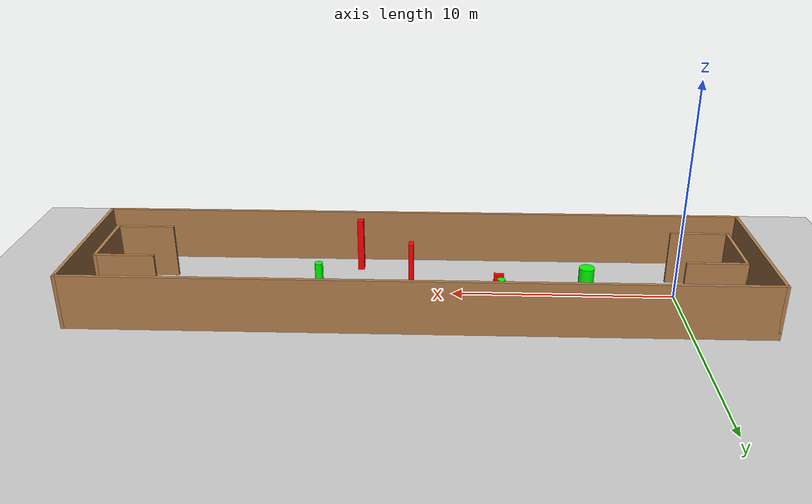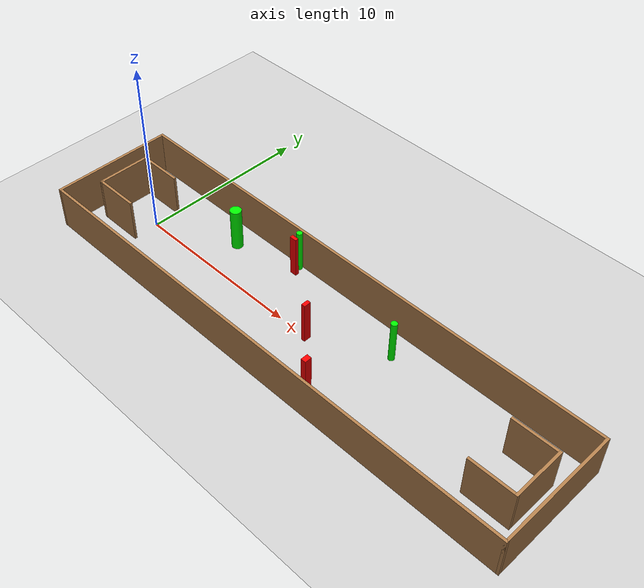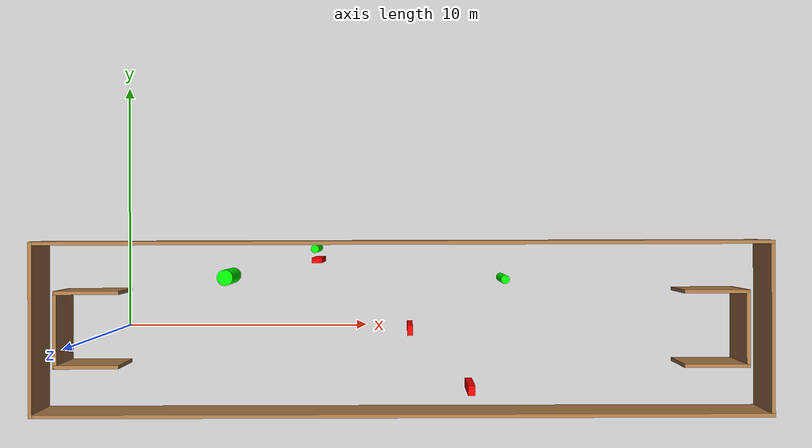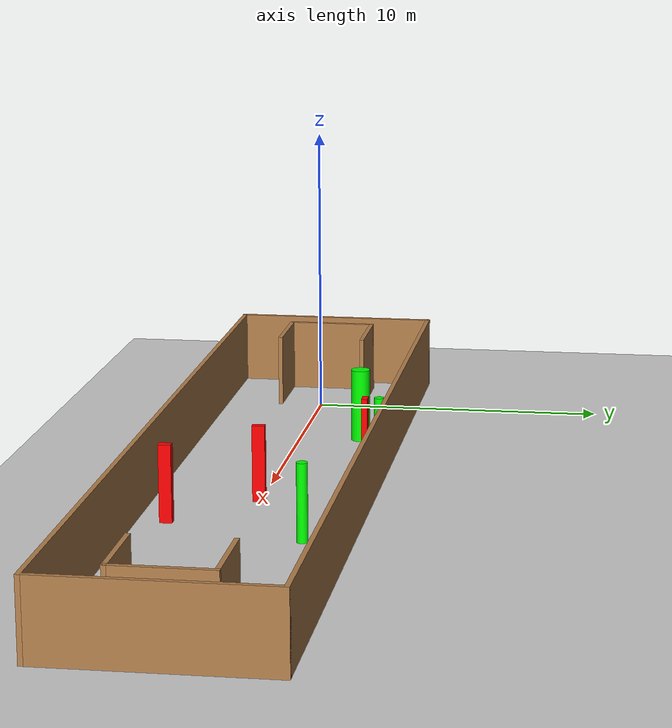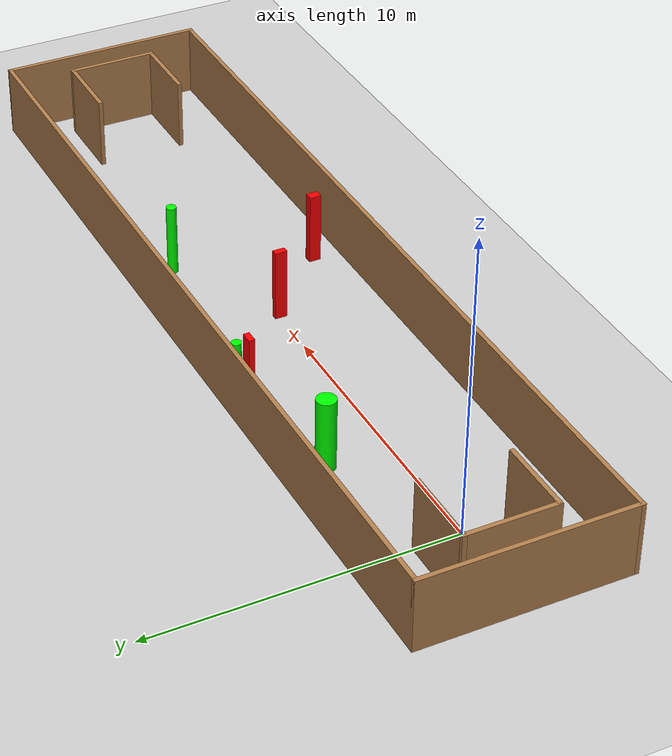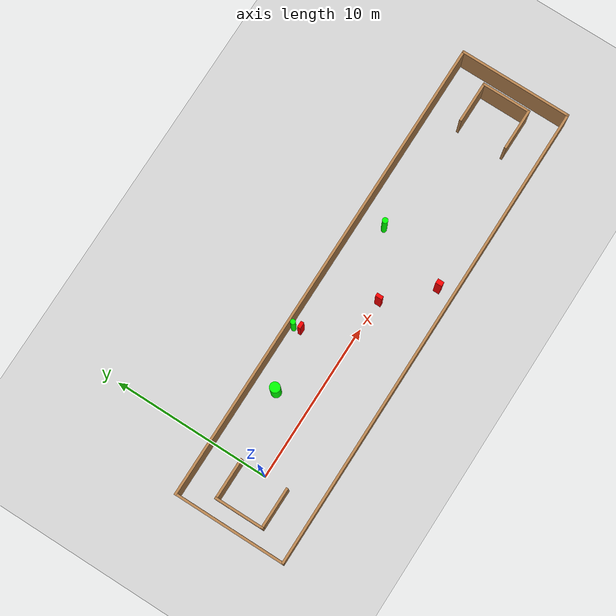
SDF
<sdf version="1.7">
 <world name="default">
  <light name="sun" type="directional">
   <pose>0 0 10 0 -0 0</pose>
   <diffuse>0.8 0.8 0.8 1</diffuse>
   <specular>0.2 0.2 0.2 1</specular>
   <attenuation>
    <range>1000</range>
    <constant>0.9</constant>
    <linear>0.01</linear>
    <quadratic>0.001</quadratic>
   </attenuation>
   <direction>-0.5 0.1 -0.9</direction>
   <spot><inner_angle>0</inner_angle><outer_angle>0</outer_angle><falloff>0</falloff></spot>
  </light>
  <model name="ground_plane">
   <static>1</static>
   <link name="link">
    <collision name="collision">
     <geometry><plane><normal>0 0 1</normal><size>100 100</size></plane></geometry>
     <surface>
      <contact><collide_bitmask>65535</collide_bitmask></contact>
      <friction><ode><mu>100</mu><mu2>50</mu2></ode></friction>
     </surface>
    </collision>
    <visual name="visual">
     <cast_shadows>0</cast_shadows>
     <geometry><plane><normal>0 0 1</normal><size>100 100</size></plane></geometry>
     <material>
      <script><uri>file://media/materials/scripts/gazebo.material</uri><name>Gazebo/Grey</name></script>
     </material>
    </visual>
   </link>
  </model>
  <gravity>0 0 -9.8</gravity>
  <magnetic_field>6e-06 2.3e-05 -4.2e-05</magnetic_field>
  <atmosphere type="adiabatic"/>
  <physics type="ode">
   <max_step_size>0.001</max_step_size>
   <real_time_factor>1</real_time_factor>
   <real_time_update_rate>1000</real_time_update_rate>
  </physics>
  <scene><ambient>0.4 0.4 0.4 1</ambient><background>0.7 0.7 0.7 1</background><shadows>1</shadows></scene>
  <spherical_coordinates>
   <surface_model>EARTH_WGS84</surface_model>
   <latitude_deg>0</latitude_deg>
   <longitude_deg>0</longitude_deg>
   <elevation>0</elevation>
   <heading_deg>0</heading_deg>
  </spherical_coordinates>
  <model name="my_base_walls">
   <link name="Wall_0">
    <collision name="Wall_0_Collision">
     <geometry><box><size>7.15 0.15 2.5</size></box></geometry>
     <pose>0 0 1.25 0 -0 0</pose>
    </collision>
    <visual name="Wall_0_Visual">
     <pose>0 0 1.25 0 -0 0</pose>
     <geometry><box><size>7.15 0.15 2.5</size></box></geometry>
     <material>
      <script><uri>file://media/materials/scripts/gazebo.material</uri><name>Gazebo/Wood</name></script>
      <ambient>1 1 1 1</ambient>
     </material>
     <meta><layer>0</layer></meta>
    </visual>
    <pose>-15 0 0 0 -0 1.5708</pose>
   </link>
   <link name="Wall_10">
    <collision name="Wall_10_Collision">
     <geometry><box><size>2.65 0.15 2.5</size></box></geometry>
     <pose>0 0 1.25 0 -0 0</pose>
    </collision>
    <visual name="Wall_10_Visual">
     <pose>0 0 1.25 0 -0 0</pose>
     <geometry><box><size>2.65 0.15 2.5</size></box></geometry>
     <material>
      <script><uri>file://media/materials/scripts/gazebo.material</uri><name>Gazebo/Wood</name></script>
      <ambient>1 1 1 1</ambient>
     </material>
     <meta><layer>0</layer></meta>
    </visual>
    <pose>-12.75 -1.5 0 0 -0 0</pose>
   </link>
   <link name="Wall_12">
    <collision name="Wall_12_Collision">
     <geometry><box><size>2.65 0.15 2.5</size></box></geometry>
     <pose>0 0 1.25 0 -0 0</pose>
    </collision>
    <visual name="Wall_12_Visual">
     <pose>0 0 1.25 0 -0 0</pose>
     <geometry><box><size>2.65 0.15 2.5</size></box></geometry>
     <material>
      <script><uri>file://media/materials/scripts/gazebo.material</uri><name>Gazebo/Wood</name></script>
      <ambient>1 1 1 1</ambient>
     </material>
     <meta><layer>0</layer></meta>
    </visual>
    <pose>-12.75 1.5 0 0 -0 0</pose>
   </link>
   <link name="Wall_14">
    <collision name="Wall_14_Collision">
     <geometry><box><size>3.15 0.15 2.5</size></box></geometry>
     <pose>0 0 1.25 0 -0 0</pose>
    </collision>
    <visual name="Wall_14_Visual">
     <pose>0 0 1.25 0 -0 0</pose>
     <geometry><box><size>3.15 0.15 2.5</size></box></geometry>
     <material>
      <script><uri>file://media/materials/scripts/gazebo.material</uri><name>Gazebo/Wood</name></script>
      <ambient>1 1 1 1</ambient>
     </material>
     <meta><layer>0</layer></meta>
    </visual>
    <pose>14 0 0 0 -0 -1.5708</pose>
   </link>
   <link name="Wall_15">
    <collision name="Wall_15_Collision">
     <geometry><box><size>2.65 0.15 2.5</size></box></geometry>
     <pose>0 0 1.25 0 -0 0</pose>
    </collision>
    <visual name="Wall_15_Visual">
     <pose>0 0 1.25 0 -0 0</pose>
     <geometry><box><size>2.65 0.15 2.5</size></box></geometry>
     <material>
      <script><uri>file://media/materials/scripts/gazebo.material</uri><name>Gazebo/Wood</name></script>
      <ambient>1 1 1 1</ambient>
     </material>
     <meta><layer>0</layer></meta>
    </visual>
    <pose>12.75 -1.5 0 0 -0 3.14159</pose>
   </link>
   <link name="Wall_17">
    <collision name="Wall_17_Collision">
     <geometry><box><size>2.65 0.15 2.5</size></box></geometry>
     <pose>0 0 1.25 0 -0 0</pose>
    </collision>
    <visual name="Wall_17_Visual">
     <pose>0 0 1.25 0 -0 0</pose>
     <geometry><box><size>2.65 0.15 2.5</size></box></geometry>
     <material>
      <script><uri>file://media/materials/scripts/gazebo.material</uri><name>Gazebo/Wood</name></script>
      <ambient>1 1 1 1</ambient>
     </material>
     <meta><layer>0</layer></meta>
    </visual>
    <pose>12.75 1.5 0 0 -0 3.14159</pose>
   </link>
   <link name="Wall_2">
    <collision name="Wall_2_Collision">
     <geometry><box><size>30.15 0.15 2.5</size></box></geometry>
     <pose>0 0 1.25 0 -0 0</pose>
    </collision>
    <visual name="Wall_2_Visual">
     <pose>0 0 1.25 0 -0 0</pose>
     <geometry><box><size>30.15 0.15 2.5</size></box></geometry>
     <material>
      <script><uri>file://media/materials/scripts/gazebo.material</uri><name>Gazebo/Wood</name></script>
      <ambient>1 1 1 1</ambient>
     </material>
     <meta><layer>0</layer></meta>
    </visual>
    <pose>-0 -3.5 0 0 -0 0</pose>
   </link>
   <link name="Wall_4">
    <collision name="Wall_4_Collision">
     <geometry><box><size>30.15 0.15 2.5</size></box></geometry>
     <pose>0 0 1.25 0 -0 0</pose>
    </collision>
    <visual name="Wall_4_Visual">
     <pose>0 0 1.25 0 -0 0</pose>
     <geometry><box><size>30.15 0.15 2.5</size></box></geometry>
     <material>
      <script><uri>file://media/materials/scripts/gazebo.material</uri><name>Gazebo/Wood</name></script>
      <ambient>1 1 1 1</ambient>
     </material>
     <meta><layer>0</layer></meta>
    </visual>
    <pose>-0 3.5 0 0 -0 0</pose>
   </link>
   <link name="Wall_6">
    <collision name="Wall_6_Collision">
     <geometry><box><size>7.15 0.15 2.5</size></box></geometry>
     <pose>0 0 1.25 0 -0 0</pose>
    </collision>
    <visual name="Wall_6_Visual">
     <pose>0 0 1.25 0 -0 0</pose>
     <geometry><box><size>7.15 0.15 2.5</size></box></geometry>
     <material>
      <script><uri>file://media/materials/scripts/gazebo.material</uri><name>Gazebo/Wood</name></script>
      <ambient>1 1 1 1</ambient>
     </material>
     <meta><layer>0</layer></meta>
    </visual>
    <pose>15 0 0 0 -0 -1.5708</pose>
   </link>
   <link name="Wall_9">
    <collision name="Wall_9_Collision">
     <geometry><box><size>3.15 0.15 2.5</size></box></geometry>
     <pose>0 0 1.25 0 -0 0</pose>
    </collision>
    <visual name="Wall_9_Visual">
     <pose>0 0 1.25 0 -0 0</pose>
     <geometry><box><size>3.15 0.15 2.5</size></box></geometry>
     <material>
      <script><uri>file://media/materials/scripts/gazebo.material</uri><name>Gazebo/Wood</name></script>
      <ambient>1 1 1 1</ambient>
     </material>
     <meta><layer>0</layer></meta>
    </visual>
    <pose>-14 0 0 0 -0 -1.5708</pose>
   </link>
   <static>1</static>
   <pose>11.5 0 0 0 -0 0</pose>
  </model>
  <model name="cylinder1">
   <static>1</static>
   <link name="link">
    <inertial>
     <mass>1</mass>
     <inertia><ixx>0.5</ixx><ixy>0</ixy><ixz>0</ixz><iyy>0.5</iyy><iyz>0</iyz><izz>1</izz></inertia>
    </inertial>
    <collision name="collision">
     <geometry><cylinder><radius>0.321667019357331</radius><length>2.5</length></cylinder></geometry>
    </collision>
    <visual name="visual">
     <geometry><cylinder><radius>0.321667019357331</radius><length>2.5</length></cylinder></geometry>
     <material>
      <ambient>0 1 0 1</ambient>
      <diffuse>0 1 0 1</diffuse>
      <specular>0.1 0.1 0.1 1</specular>
      <emissive>0 0 0 0</emissive>
     </material>
    </visual>
   </link>
   <pose>4.3769079451399815 2.099603118711615 1.25 0 0 0</pose>
  </model>
  <model name="cylinder2">
   <static>1</static>
   <link name="link">
    <inertial>
     <mass>1</mass>
     <inertia><ixx>0.5</ixx><ixy>0</ixy><ixz>0</ixz><iyy>0.5</iyy><iyz>0</iyz><izz>1</izz></inertia>
    </inertial>
    <collision name="collision">
     <geometry><cylinder><radius>0.16046130707328055</radius><length>2.5</length></cylinder></geometry>
    </collision>
    <visual name="visual">
     <geometry><cylinder><radius>0.16046130707328055</radius><length>2.5</length></cylinder></geometry>
     <material>
      <ambient>0 1 0 1</ambient>
      <diffuse>0 1 0 1</diffuse>
      <specular>0.1 0.1 0.1 1</specular>
      <emissive>0 0 0 0</emissive>
     </material>
    </visual>
   </link>
   <pose>8.01719885124676 3.2573945104764004 1.25 0 0 0</pose>
  </model>
  <model name="cylinder3">
   <static>1</static>
   <link name="link">
    <inertial>
     <mass>1</mass>
     <inertia><ixx>0.5</ixx><ixy>0</ixy><ixz>0</ixz><iyy>0.5</iyy><iyz>0</iyz><izz>1</izz></inertia>
    </inertial>
    <collision name="collision">
     <geometry><cylinder><radius>0.17378470122475884</radius><length>2.5</length></cylinder></geometry>
    </collision>
    <visual name="visual">
     <geometry><cylinder><radius>0.17378470122475884</radius><length>2.5</length></cylinder></geometry>
     <material>
      <ambient>0 1 0 1</ambient>
      <diffuse>0 1 0 1</diffuse>
      <specular>0.1 0.1 0.1 1</specular>
      <emissive>0 0 0 0</emissive>
     </material>
    </visual>
   </link>
   <pose>15.693675257004434 2.0022222861836623 1.25 0 0 0</pose>
  </model>
  <model name="box1">
   <static>1</static>
   <link name="link">
    <inertial>
     <mass>1</mass>
     <inertia><ixx>0.083</ixx><ixy>0</ixy><ixz>0</ixz><iyy>0.083</iyy><iyz>0</iyz><izz>0.083</izz></inertia>
    </inertial>
    <collision name="collision">
     <geometry><box><size>0.2888613262156104 0.4032164810032166 2.5</size></box></geometry>
    </collision>
    <visual name="visual">
     <geometry><box><size>0.2888613262156104 0.4032164810032166 2.5</size></box></geometry>
     <material>
      <ambient>1 0 0 1</ambient>
      <diffuse>1 0 0 1</diffuse>
      <specular>0.1 0.1 0.1 1</specular>
      <emissive>0 0 0 0</emissive>
     </material>
    </visual>
    <sensor name="my_contact" type="contact">
     <contact><collision>box_collision</collision><topic>__default_topic__</topic></contact>
    </sensor>
   </link>
   <pose>14.328789090388304 -2.485373382093586 1.25 0 0 0</pose>
  </model>
  <model name="box2">
   <static>1</static>
   <link name="link">
    <inertial>
     <mass>1</mass>
     <inertia><ixx>0.083</ixx><ixy>0</ixy><ixz>0</ixz><iyy>0.083</iyy><iyz>0</iyz><izz>0.083</izz></inertia>
    </inertial>
    <collision name="collision">
     <geometry><box><size>0.21712969243397717 0.41235693402587453 2.5</size></box></geometry>
    </collision>
    <visual name="visual">
     <geometry><box><size>0.21712969243397717 0.41235693402587453 2.5</size></box></geometry>
     <material>
      <ambient>1 0 0 1</ambient>
      <diffuse>1 0 0 1</diffuse>
      <specular>0.1 0.1 0.1 1</specular>
      <emissive>0 0 0 0</emissive>
     </material>
    </visual>
    <sensor name="my_contact" type="contact">
     <contact><collision>box_collision</collision><topic>__default_topic__</topic></contact>
    </sensor>
   </link>
   <pose>11.844425180337204 -0.04568249252732359 1.25 0 0 0</pose>
  </model>
  <model name="box3">
   <static>1</static>
   <link name="link">
    <inertial>
     <mass>1</mass>
     <inertia><ixx>0.083</ixx><ixy>0</ixy><ixz>0</ixz><iyy>0.083</iyy><iyz>0</iyz><izz>0.083</izz></inertia>
    </inertial>
    <collision name="collision">
     <geometry><box><size>0.40694615007984625 0.20306358937911637 2.5</size></box></geometry>
    </collision>
    <visual name="visual">
     <geometry><box><size>0.40694615007984625 0.20306358937911637 2.5</size></box></geometry>
     <material>
      <ambient>1 0 0 1</ambient>
      <diffuse>1 0 0 1</diffuse>
      <specular>0.1 0.1 0.1 1</specular>
      <emissive>0 0 0 0</emissive>
     </material>
    </visual>
    <sensor name="my_contact" type="contact">
     <contact><collision>box_collision</collision><topic>__default_topic__</topic></contact>
    </sensor>
   </link>
   <pose>8.098953642640707 2.796927556294638 1.25 0 0 0</pose>
  </model>
 </world>
</sdf>
